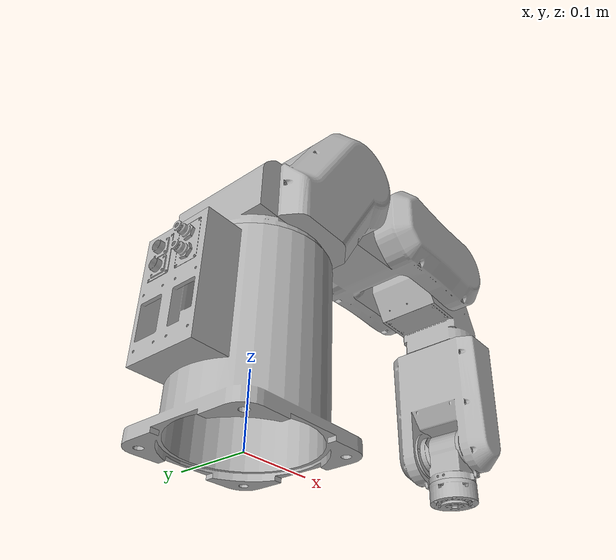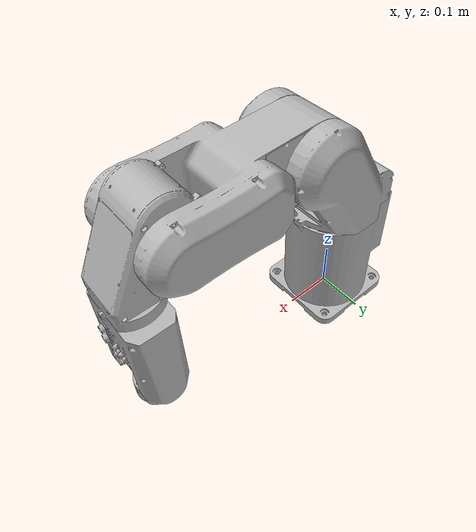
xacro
<?xml version="1.0"?>
<!-- PMC 6-axis Articulated Manipulator -->
<robot name="pmc6r" xmlns:xacro="http://www.ros.org/wiki/xacro">

    <!-- Constants for robot dimensions -->
    <xacro:property name="PI" value="3.1415926535897931"/>
    <xacro:property name="deg" value="0.017453293"/> <!-- Degrees to Radians -->
    <!-- assumption value derive from udacity kuka kr210  12:1 -->
    <xacro:property name="mass0" value="12.5"/> <!-- assumption value for mass -->
    <xacro:property name="mass1" value="11.5"/> <!-- assumption value for mass -->
    <xacro:property name="mass2" value="8.0"/> <!-- assumption value for mass -->
    <xacro:property name="mass3" value="5.9"/> <!-- assumption value for mass -->
    <xacro:property name="mass4" value="1.5"/> <!-- assumption value for mass -->
    <xacro:property name="mass5" value="0.6"/> <!-- assumption value for mass -->
    <xacro:property name="mass6" value="0.04"/> <!-- assumption value for mass -->

    <!-- Import all Gazebo-customization elements, including Gazebo colors -->
    <xacro:include filename="$(find pmc6r_support)/urdf/pmc6r.gazebo" />

    <!-- Add a world link to fix rbot to Gazebo 'base_link' -->
    <link name="world"/>

    <joint name="fixed_base_joint" type="fixed">
        <parent link="world"/>
        <child link="base_link"/>
        <origin xyz="0 0 0" rpy="0 0 0"/>
    </joint>

    <!-- Start the description of robot -->
    <link name="base_link">
        <visual>
            <geometry>
                <mesh filename="package://pmc6r_support/meshes/visual/PMC_BASE.STL"/>
            </geometry>
            <material name="grey">
                <color rgba="0.7 0.7 0.7 1.0"/>
            </material>
        </visual>
        <collision>
            <geometry>
                <mesh filename="package://pmc6r_support/meshes/collision/PMC_BASEc.STL"/>
            </geometry>
        </collision>
        <inertial>
            <origin xyz="0 0 0.2" rpy="0 0 0"/>
            <mass value="${mass0}"/>
            <inertia
                ixx="0.6" ixy="0.0" ixz="0.0"
                iyy="0.7" iyz="0.0"
                izz="1.0"/>
        </inertial>
    </link>

    <link name="link_1">
        <visual>
            <geometry>
                <mesh filename="package://pmc6r_support/meshes/visual/PMC_J1.STL"/>
            </geometry>
            <material name="grey">
                <color rgba="0.7 0.7 0.7 1.0"/>
            </material>
        </visual>
        <collision>
            <geometry>
                <mesh filename="package://pmc6r_support/meshes/collision/PMC_J1c.STL"/>
            </geometry>
        </collision>
        <inertial>
            <origin xyz="0.05 0 0.4" rpy="0 0 0"/>
            <mass value="${mass1}"/>
            <inertia
                ixx="0.3" ixy="0.0" ixz="0.0"
                iyy="0.5" iyz="0.0"
                izz="0.5"/>
        </inertial>
    </link>

    <link name="link_2">
        <visual>
            <geometry>
                <mesh filename="package://pmc6r_support/meshes/visual/PMC_J2.STL"/>
            </geometry>
            <material name="grey">
                <color rgba="0.7 0.7 0.7 1.0"/>
            </material>
        </visual>
        <collision>
            <geometry>
                <mesh filename="package://pmc6r_support/meshes/collision/PMC_J2c.STL"/>
            </geometry>
        </collision>
        <inertial>
            <origin xyz="0 0 0.14" rpy="0 0 0"/>
            <mass value="${mass2}"/>
            <inertia
                ixx="0.4" ixy="0.0" ixz="0.0"
                iyy="0.4" iyz="0.0"
                izz="0.1"/>
        </inertial>
    </link>

    <link name="link_3">
        <visual>
            <geometry>
                <mesh filename="package://pmc6r_support/meshes/visual/PMC_J3.STL"/>
            </geometry>
            <material name="grey">
                <color rgba="0.7 0.7 0.7 1.0"/>
            </material>
        </visual>
        <collision>
            <geometry>
                <mesh filename="package://pmc6r_support/meshes/collision/PMC_J3c.STL"/>
            </geometry>
        </collision>
        <inertial>
            <origin xyz="0.07 0 0.03" rpy="0 0 0"/>
            <mass value="${mass3}"/>
            <inertia
                ixx="0.1" ixy="0.0" ixz="0.0"
                iyy="0.1" iyz="0.0"
                izz="1.0"/>
        </inertial>
    </link>
    <link name="link_4">
        <visual>
            <geometry>
                <mesh filename="package://pmc6r_support/meshes/visual/PMC_J4.STL"/>
            </geometry>
            <material name="grey">
                <color rgba="0.7 0.7 0.7 1.0"/>
            </material>
        </visual>
        <collision>
            <geometry>
                <mesh filename="package://pmc6r_support/meshes/collision/PMC_J4c.STL"/>
            </geometry>
        </collision>
        <inertial>
            <origin xyz="0.14 0 0.03" rpy="0 0 0"/>
            <mass value="${mass4}"/>
            <inertia
                ixx="0.0018" ixy="0.0" ixz="0.0"
                iyy="0.0055" iyz="0.0"
                izz="0.0064"/>
        </inertial>
    </link>

    <link name="link_5">
        <visual>
            <geometry>
                <mesh filename="package://pmc6r_support/meshes/visual/PMC_J5.STL"/>
            </geometry>
            <material name="grey">
                <color rgba="0.7 0.7 0.7 1.0"/>
            </material>
        </visual>
        <collision>
            <geometry>
                <mesh filename="package://pmc6r_support/meshes/collision/PMC_J5c.STL"/>
            </geometry>
        </collision>
        <inertial>
            <origin xyz="0 0 0" rpy="0 0 0"/>
            <mass value="${mass4}"/>
            <inertia
                ixx="0.0004" ixy="0.0" ixz="0.0"
                iyy="0.00068" iyz="0.0"
                izz="0.00068"/>
        </inertial>
    </link>

    <link name="link_6">
        <visual>
            <geometry>
                <mesh filename="package://pmc6r_support/meshes/visual/PMC_J6.STL"/>
            </geometry>
            <material name="grey">
                <color rgba="0.7 0.7 0.7 1.0"/>
            </material>
        </visual>
        <collision>
            <geometry>
                <mesh filename="package://pmc6r_support/meshes/collision/PMC_J6c.STL"/>
            </geometry>
        </collision>
        <inertial>
            <origin xyz="0 0 0" rpy="0 0 0"/>
            <mass value="${mass4}"/>
            <inertia
                ixx="0.00004" ixy="0.0" ixz="0.0"
                iyy="0.00003" iyz="0.0"
                izz="0.00003"/>
        </inertial>
    </link>

    <joint name="joint_1" type="revolute">
        <parent link="base_link"/>
        <child link="link_1"/>
        <origin xyz="0.0 0.0 0.423" rpy="0 0 0"/>
        <axis xyz="0 0 1"/>
        <limit lower="-2.967" upper="2.967" effort="0" velocity="0.5"/>
        <dynamics damping="0.7"/>
    </joint>

    <joint name="joint_2" type="revolute">
        <parent link="link_1"/>
        <child link="link_2"/>
        <origin xyz="0.105 0 0" rpy="0 1.5708 0"/>
        <axis xyz="0 -1 0"/>
        <limit lower="-0.7854" upper="3.3161" effort="0" velocity="0.5"/>
        <dynamics damping="0.7"/>
    </joint>

    <joint name="joint_3" type="revolute">
        <parent link="link_2"/>
        <child link="link_3"/>
        <origin xyz="0 0 0.280" rpy="0 0 0"/>
        <axis xyz="0 -1 0"/>
        <limit lower="-2.0769" upper="2.9496" effort="0" velocity="0.5"/>
        <dynamics damping="0.7"/>
    </joint>

    <joint name="joint_4" type="revolute">
        <parent link="link_3"/>
        <child link="link_4"/>
        <origin xyz="0.284 0 0.065" rpy="0 0 0"/>
        <axis xyz="1 0 0"/>
        <limit lower="-3.3161" upper="3.3161" effort="0" velocity="0.5"/>
        <dynamics damping="0.7"/>
    </joint>

    <joint name="joint_5" type="revolute">
        <parent link="link_4"/>
        <child link="link_5"/>
        <origin xyz="0 0 0" rpy="0 0 0"/>
        <axis xyz="0 -1 0"/>
        <limit lower="-2.0944" upper="2.0944" effort="0" velocity="0.5"/>
        <dynamics damping="0.7"/>
    </joint>

    <joint name="joint_6" type="revolute">
        <parent link="link_5"/>
        <child link="link_6"/>
        <origin xyz="0.0905 0 0" rpy="0 0 0"/>
        <axis xyz="1 0 0"/>
        <limit lower="-6.1086" upper="6.1086" effort="0" velocity="0.5"/>
        <dynamics damping="0.7"/>
    </joint>

    <!--  TODO: Update real gear ratio -->
    <transmission name="tran1">
        <type>transmission_interface/SimpleTransmission</type>
        <joint name="joint_1">
            <hardwareInterface>hardware_interface/PositionJointInterface</hardwareInterface>
        </joint>
        <actuator name="motor_1">
            <hardwareInterface>hardware_interface/PositionJointInterface</hardwareInterface>
            <mechanicalReduction>1</mechanicalReduction>
        </actuator>
    </transmission>

    <transmission name="tran2">
        <type>transmission_interface/SimpleTransmission</type>
        <joint name="joint_2">
            <hardwareInterface>hardware_interface/PositionJointInterface</hardwareInterface>
        </joint>
        <actuator name="motor_2">
            <hardwareInterface>hardware_interface/PositionJointInterface</hardwareInterface>
            <mechanicalReduction>1</mechanicalReduction>
        </actuator>
    </transmission>

    <transmission name="tran3">
        <type>transmission_interface/SimpleTransmission</type>
        <joint name="joint_3">
            <hardwareInterface>hardware_interface/PositionJointInterface</hardwareInterface>
        </joint>
        <actuator name="motor_3">
            <hardwareInterface>hardware_interface/PositionJointInterface</hardwareInterface>
            <mechanicalReduction>1</mechanicalReduction>
        </actuator>
    </transmission>

    <transmission name="tran4">
        <type>transmission_interface/SimpleTransmission</type>
        <joint name="joint_4">
            <hardwareInterface>hardware_interface/PositionJointInterface</hardwareInterface>
        </joint>
        <actuator name="motor_4">
            <hardwareInterface>hardware_interface/PositionJointInterface</hardwareInterface>
            <mechanicalReduction>1</mechanicalReduction>
        </actuator>
    </transmission>

    <transmission name="tran5">
        <type>transmission_interface/SimpleTransmission</type>
        <joint name="joint_5">
            <hardwareInterface>hardware_interface/PositionJointInterface</hardwareInterface>
        </joint>
        <actuator name="motor_5">
            <hardwareInterface>hardware_interface/PositionJointInterface</hardwareInterface>
            <mechanicalReduction>1</mechanicalReduction>
        </actuator>
    </transmission>

    <transmission name="tran6">
        <type>transmission_interface/SimpleTransmission</type>
        <joint name="joint_6">
            <hardwareInterface>hardware_interface/PositionJointInterface</hardwareInterface>
        </joint>
        <actuator name="motor_6">
            <hardwareInterface>hardware_interface/PositionJointInterface</hardwareInterface>
            <mechanicalReduction>1</mechanicalReduction>
        </actuator>
    </transmission>

</robot>
